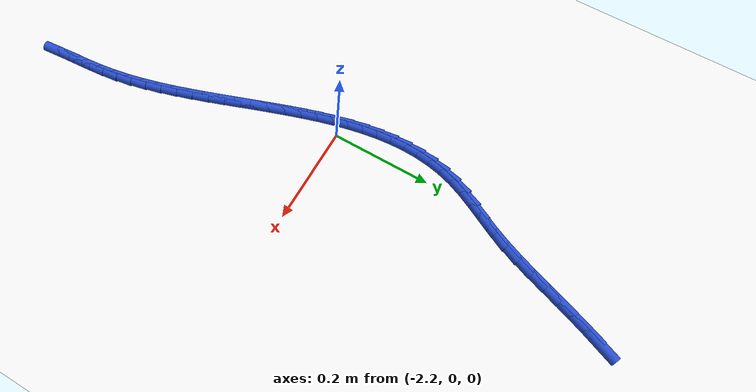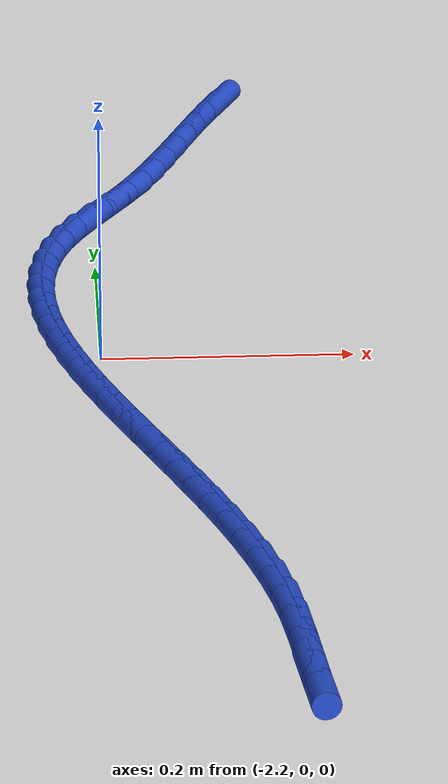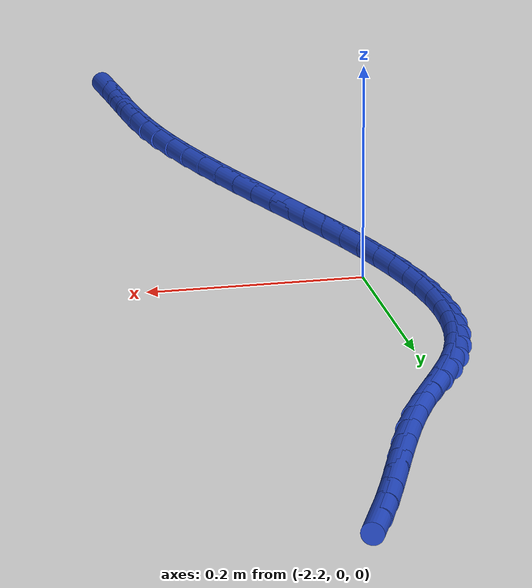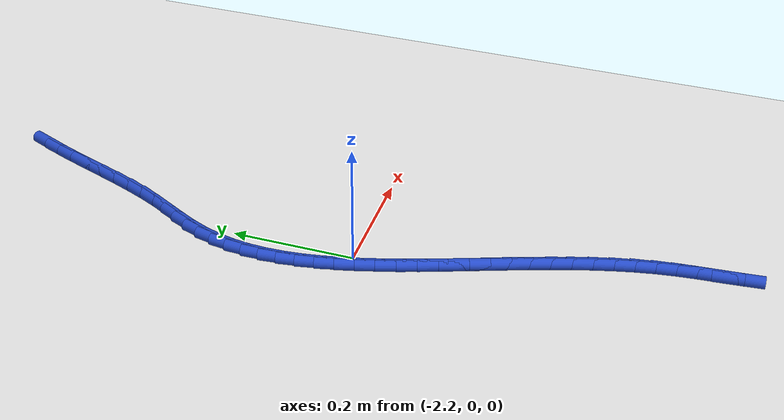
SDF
<sdf version="1.6">
 <world name="default">
  <model name="ground_plane">
   <static>1</static>
   <link name="link">
    <collision name="collision">
     <geometry><plane><normal>0 0 1</normal><size>100 100</size></plane></geometry>
     <surface><friction><ode><mu>100</mu><mu2>50</mu2></ode></friction></surface>
    </collision>
    <visual name="visual">
     <cast_shadows>0</cast_shadows>
     <geometry><plane><normal>0 0 1</normal><size>100 100</size></plane></geometry>
     <material>
      <script><uri>file://media/materials/scripts/gazebo.material</uri><name>Gazebo/WhiteGlow</name></script>
     </material>
    </visual>
   </link>
  </model>
  <model name="line">
   <link name="link_100">
    <pose>-2.076933704836808 0.5950474424611257 0.01 0 1.57 1.1852265255010952</pose>
    <collision name="collision">
     <geometry><cylinder><radius>0.01</radius><length>0.08</length></cylinder></geometry>
    </collision>
    <visual name="visual">
     <material>
      <script><name>Gazebo/Blue</name><uri>file://media/materials/scripts/gazebo.material</uri></script>
     </material>
     <geometry><cylinder><radius>0.01</radius><length>0.08</length></cylinder></geometry>
    </visual>
   </link>
   <link name="link_101">
    <pose>-2.0891616139592695 0.5649209466030753 0.01 0 1.57 1.212980506196031</pose>
    <collision name="collision">
     <geometry><cylinder><radius>0.01</radius><length>0.08</length></cylinder></geometry>
    </collision>
    <visual name="visual">
     <material>
      <script><name>Gazebo/Blue</name><uri>file://media/materials/scripts/gazebo.material</uri></script>
     </material>
     <geometry><cylinder><radius>0.01</radius><length>0.08</length></cylinder></geometry>
    </visual>
   </link>
   <link name="link_102">
    <pose>-2.100732188168347 0.533976240412454 0.01 0 1.57 1.2287905092218045</pose>
    <collision name="collision">
     <geometry><cylinder><radius>0.01</radius><length>0.08</length></cylinder></geometry>
    </collision>
    <visual name="visual">
     <material>
      <script><name>Gazebo/Blue</name><uri>file://media/materials/scripts/gazebo.material</uri></script>
     </material>
     <geometry><cylinder><radius>0.01</radius><length>0.08</length></cylinder></geometry>
    </visual>
   </link>
   <link name="link_103">
    <pose>-2.1119272562987486 0.5025290036370567 0.01 0 1.57 1.233292099516139</pose>
    <collision name="collision">
     <geometry><cylinder><radius>0.01</radius><length>0.08</length></cylinder></geometry>
    </collision>
    <visual name="visual">
     <material>
      <script><name>Gazebo/Blue</name><uri>file://media/materials/scripts/gazebo.material</uri></script>
     </material>
     <geometry><cylinder><radius>0.01</radius><length>0.08</length></cylinder></geometry>
    </visual>
   </link>
   <link name="link_104">
    <pose>-2.1230286471851842 0.4708949160246778 0.01 0 1.57 1.2267125303660324</pose>
    <collision name="collision">
     <geometry><cylinder><radius>0.01</radius><length>0.08</length></cylinder></geometry>
    </collision>
    <visual name="visual">
     <material>
      <script><name>Gazebo/Blue</name><uri>file://media/materials/scripts/gazebo.material</uri></script>
     </material>
     <geometry><cylinder><radius>0.01</radius><length>0.08</length></cylinder></geometry>
    </visual>
   </link>
   <link name="link_105">
    <pose>-2.1343181896623635 0.43938965732311314 0.01 0 1.57 1.208875403700262</pose>
    <collision name="collision">
     <geometry><cylinder><radius>0.01</radius><length>0.08</length></cylinder></geometry>
    </collision>
    <visual name="visual">
     <material>
      <script><name>Gazebo/Blue</name><uri>file://media/materials/scripts/gazebo.material</uri></script>
     </material>
     <geometry><cylinder><radius>0.01</radius><length>0.08</length></cylinder></geometry>
    </visual>
   </link>
   <link name="link_106">
    <pose>-2.146077712564995 0.4083289072801571 0.01 0 1.57 1.1792124687725951</pose>
    <collision name="collision">
     <geometry><cylinder><radius>0.01</radius><length>0.08</length></cylinder></geometry>
    </collision>
    <visual name="visual">
     <material>
      <script><name>Gazebo/Blue</name><uri>file://media/materials/scripts/gazebo.material</uri></script>
     </material>
     <geometry><cylinder><radius>0.01</radius><length>0.08</length></cylinder></geometry>
    </visual>
   </link>
   <link name="link_107">
    <pose>-2.1585890447277896 0.3780283456436044 0.01 0 1.57 1.136882583603699</pose>
    <collision name="collision">
     <geometry><cylinder><radius>0.01</radius><length>0.08</length></cylinder></geometry>
    </collision>
    <visual name="visual">
     <material>
      <script><name>Gazebo/Blue</name><uri>file://media/materials/scripts/gazebo.material</uri></script>
     </material>
     <geometry><cylinder><radius>0.01</radius><length>0.08</length></cylinder></geometry>
    </visual>
   </link>
   <link name="link_108">
    <pose>-2.172131461193955 0.3488022006890795 0.01 0 1.57 1.0950958668600286</pose>
    <collision name="collision">
     <geometry><cylinder><radius>0.01</radius><length>0.08</length></cylinder></geometry>
    </collision>
    <visual name="visual">
     <material>
      <script><name>Gazebo/Blue</name><uri>file://media/materials/scripts/gazebo.material</uri></script>
     </material>
     <geometry><cylinder><radius>0.01</radius><length>0.08</length></cylinder></geometry>
    </visual>
   </link>
   <link name="link_109">
    <pose>-2.1865881488084913 0.3207395801229507 0.01 0 1.57 1.0841174575841934</pose>
    <collision name="collision">
     <geometry><cylinder><radius>0.01</radius><length>0.08</length></cylinder></geometry>
    </collision>
    <visual name="visual">
     <material>
      <script><name>Gazebo/Blue</name><uri>file://media/materials/scripts/gazebo.material</uri></script>
     </material>
     <geometry><cylinder><radius>0.01</radius><length>0.08</length></cylinder></geometry>
    </visual>
   </link>
   <link name="link_110">
    <pose>-2.2010210784248923 0.2934628455775307 0.01 0 1.57 1.1099492296963676</pose>
    <collision name="collision">
     <geometry><cylinder><radius>0.01</radius><length>0.08</length></cylinder></geometry>
    </collision>
    <visual name="visual">
     <material>
      <script><name>Gazebo/Blue</name><uri>file://media/materials/scripts/gazebo.material</uri></script>
     </material>
     <geometry><cylinder><radius>0.01</radius><length>0.08</length></cylinder></geometry>
    </visual>
   </link>
   <link name="link_111">
    <pose>-2.2143901889502384 0.2665363678387439 0.01 0 1.57 1.1755723863722416</pose>
    <collision name="collision">
     <geometry><cylinder><radius>0.01</radius><length>0.08</length></cylinder></geometry>
    </collision>
    <visual name="visual">
     <material>
      <script><name>Gazebo/Blue</name><uri>file://media/materials/scripts/gazebo.material</uri></script>
     </material>
     <geometry><cylinder><radius>0.01</radius><length>0.08</length></cylinder></geometry>
    </visual>
   </link>
   <link name="link_112">
    <pose>-2.225658389968473 0.2395256204548481 0.01 0 1.57 1.269435706342372</pose>
    <collision name="collision">
     <geometry><cylinder><radius>0.01</radius><length>0.08</length></cylinder></geometry>
    </collision>
    <visual name="visual">
     <material>
      <script><name>Gazebo/Blue</name><uri>file://media/materials/scripts/gazebo.material</uri></script>
     </material>
     <geometry><cylinder><radius>0.01</radius><length>0.08</length></cylinder></geometry>
    </visual>
   </link>
   <link name="link_113">
    <pose>-2.234171188793107 0.21213810331507052 0.01 0 1.57 1.3629164360685526</pose>
    <collision name="collision">
     <geometry><cylinder><radius>0.01</radius><length>0.08</length></cylinder></geometry>
    </collision>
    <visual name="visual">
     <material>
      <script><name>Gazebo/Blue</name><uri>file://media/materials/scripts/gazebo.material</uri></script>
     </material>
     <geometry><cylinder><radius>0.01</radius><length>0.08</length></cylinder></geometry>
    </visual>
   </link>
   <link name="link_114">
    <pose>-2.2400299407012425 0.18436189905208386 0.01 0 1.57 1.450756360333045</pose>
    <collision name="collision">
     <geometry><cylinder><radius>0.01</radius><length>0.08</length></cylinder></geometry>
    </collision>
    <visual name="visual">
     <material>
      <script><name>Gazebo/Blue</name><uri>file://media/materials/scripts/gazebo.material</uri></script>
     </material>
     <geometry><cylinder><radius>0.01</radius><length>0.08</length></cylinder></geometry>
    </visual>
   </link>
   <link name="link_115">
    <pose>-2.243424654576484 0.1562179999223557 0.01 0 1.57 1.5314813528676507</pose>
    <collision name="collision">
     <geometry><cylinder><radius>0.01</radius><length>0.08</length></cylinder></geometry>
    </collision>
    <visual name="visual">
     <material>
      <script><name>Gazebo/Blue</name><uri>file://media/materials/scripts/gazebo.material</uri></script>
     </material>
     <geometry><cylinder><radius>0.01</radius><length>0.08</length></cylinder></geometry>
    </visual>
   </link>
   <link name="link_116">
    <pose>-2.2445453393024355 0.12772739818235485 0.01 0 1.57 -1.537378556017024</pose>
    <collision name="collision">
     <geometry><cylinder><radius>0.01</radius><length>0.08</length></cylinder></geometry>
    </collision>
    <visual name="visual">
     <material>
      <script><name>Gazebo/Blue</name><uri>file://media/materials/scripts/gazebo.material</uri></script>
     </material>
     <geometry><cylinder><radius>0.01</radius><length>0.08</length></cylinder></geometry>
    </visual>
   </link>
   <link name="link_117">
    <pose>-2.2435820037626995 0.09891108608854889 0.01 0 1.57 -1.4729896959925945</pose>
    <collision name="collision">
     <geometry><cylinder><radius>0.01</radius><length>0.08</length></cylinder></geometry>
    </collision>
    <visual name="visual">
     <material>
      <script><name>Gazebo/Blue</name><uri>file://media/materials/scripts/gazebo.material</uri></script>
     </material>
     <geometry><cylinder><radius>0.01</radius><length>0.08</length></cylinder></geometry>
    </visual>
   </link>
   <link name="link_118">
    <pose>-2.240724656840879 0.06979005589740574 0.01 0 1.57 -1.4169000657465562</pose>
    <collision name="collision">
     <geometry><cylinder><radius>0.01</radius><length>0.08</length></cylinder></geometry>
    </collision>
    <visual name="visual">
     <material>
      <script><name>Gazebo/Blue</name><uri>file://media/materials/scripts/gazebo.material</uri></script>
     </material>
     <geometry><cylinder><radius>0.01</radius><length>0.08</length></cylinder></geometry>
    </visual>
   </link>
   <link name="link_119">
    <pose>-2.2361633074205787 0.04038529986539314 0.01 0 1.57 -1.3688077499604379</pose>
    <collision name="collision">
     <geometry><cylinder><radius>0.01</radius><length>0.08</length></cylinder></geometry>
    </collision>
    <visual name="visual">
     <material>
      <script><name>Gazebo/Blue</name><uri>file://media/materials/scripts/gazebo.material</uri></script>
     </material>
     <geometry><cylinder><radius>0.01</radius><length>0.08</length></cylinder></geometry>
    </visual>
   </link>
   <link name="link_120">
    <pose>-2.2300879643854015 0.010717810248979774 0.01 0 1.57 -1.32827301989842</pose>
    <collision name="collision">
     <geometry><cylinder><radius>0.01</radius><length>0.08</length></cylinder></geometry>
    </collision>
    <visual name="visual">
     <material>
      <script><name>Gazebo/Blue</name><uri>file://media/materials/scripts/gazebo.material</uri></script>
     </material>
     <geometry><cylinder><radius>0.01</radius><length>0.08</length></cylinder></geometry>
    </visual>
   </link>
   <link name="link_121">
    <pose>-2.222688636618951 -0.019191420695366675 0.01 0 1.57 -1.294807580846315</pose>
    <collision name="collision">
     <geometry><cylinder><radius>0.01</radius><length>0.08</length></cylinder></geometry>
    </collision>
    <visual name="visual">
     <material>
      <script><name>Gazebo/Blue</name><uri>file://media/materials/scripts/gazebo.material</uri></script>
     </material>
     <geometry><cylinder><radius>0.01</radius><length>0.08</length></cylinder></geometry>
    </visual>
   </link>
   <link name="link_122">
    <pose>-2.2141553330048303 -0.04932140071117832 0.01 0 1.57 -1.2679346530531934</pose>
    <collision name="collision">
     <geometry><cylinder><radius>0.01</radius><length>0.08</length></cylinder></geometry>
    </collision>
    <visual name="visual">
     <material>
      <script><name>Gazebo/Blue</name><uri>file://media/materials/scripts/gazebo.material</uri></script>
     </material>
     <geometry><cylinder><radius>0.01</radius><length>0.08</length></cylinder></geometry>
    </visual>
   </link>
   <link name="link_123">
    <pose>-2.204678062426643 -0.0796511375419871 0.01 0 1.57 -1.2472258988918163</pose>
    <collision name="collision">
     <geometry><cylinder><radius>0.01</radius><length>0.08</length></cylinder></geometry>
    </collision>
    <visual name="visual">
     <material>
      <script><name>Gazebo/Blue</name><uri>file://media/materials/scripts/gazebo.material</uri></script>
     </material>
     <geometry><cylinder><radius>0.01</radius><length>0.08</length></cylinder></geometry>
    </visual>
   </link>
   <link name="link_124">
    <pose>-2.1944468337679925 -0.11015963893132508 0.01 0 1.57 -1.2323220374790962</pose>
    <collision name="collision">
     <geometry><cylinder><radius>0.01</radius><length>0.08</length></cylinder></geometry>
    </collision>
    <visual name="visual">
     <material>
      <script><name>Gazebo/Blue</name><uri>file://media/materials/scripts/gazebo.material</uri></script>
     </material>
     <geometry><cylinder><radius>0.01</radius><length>0.08</length></cylinder></geometry>
    </visual>
   </link>
   <link name="link_125">
    <pose>-2.1836516559124814 -0.140825912622725 0.01 0 1.57 -1.2229429392685294</pose>
    <collision name="collision">
     <geometry><cylinder><radius>0.01</radius><length>0.08</length></cylinder></geometry>
    </collision>
    <visual name="visual">
     <material>
      <script><name>Gazebo/Blue</name><uri>file://media/materials/scripts/gazebo.material</uri></script>
     </material>
     <geometry><cylinder><radius>0.01</radius><length>0.08</length></cylinder></geometry>
    </visual>
   </link>
   <link name="link_126">
    <pose>-2.172482537743714 -0.1716289663597173 0.01 0 1.57 -1.2188914333213372</pose>
    <collision name="collision">
     <geometry><cylinder><radius>0.01</radius><length>0.08</length></cylinder></geometry>
    </collision>
    <visual name="visual">
     <material>
      <script><name>Gazebo/Blue</name><uri>file://media/materials/scripts/gazebo.material</uri></script>
     </material>
     <geometry><cylinder><radius>0.01</radius><length>0.08</length></cylinder></geometry>
    </visual>
   </link>
   <link name="link_127">
    <pose>-2.1611294881452947 -0.20254780788583482 0.01 0 1.57 -1.2200536035585547</pose>
    <collision name="collision">
     <geometry><cylinder><radius>0.01</radius><length>0.08</length></cylinder></geometry>
    </collision>
    <visual name="visual">
     <material>
      <script><name>Gazebo/Blue</name><uri>file://media/materials/scripts/gazebo.material</uri></script>
     </material>
     <geometry><cylinder><radius>0.01</radius><length>0.08</length></cylinder></geometry>
    </visual>
   </link>
   <link name="link_128">
    <pose>-2.149782516000826 -0.2335614449446095 0.01 0 1.57 -1.2263971753059795</pose>
    <collision name="collision">
     <geometry><cylinder><radius>0.01</radius><length>0.08</length></cylinder></geometry>
    </collision>
    <visual name="visual">
     <material>
      <script><name>Gazebo/Blue</name><uri>file://media/materials/scripts/gazebo.material</uri></script>
     </material>
     <geometry><cylinder><radius>0.01</radius><length>0.08</length></cylinder></geometry>
    </visual>
   </link>
   <link name="link_129">
    <pose>-2.138631630193911 -0.2646488852795734 0.01 0 1.57 -1.2379686771853458</pose>
    <collision name="collision">
     <geometry><cylinder><radius>0.01</radius><length>0.08</length></cylinder></geometry>
    </collision>
    <visual name="visual">
     <material>
      <script><name>Gazebo/Blue</name><uri>file://media/materials/scripts/gazebo.material</uri></script>
     </material>
     <geometry><cylinder><radius>0.01</radius><length>0.08</length></cylinder></geometry>
    </visual>
   </link>
   <link name="link_130">
    <pose>-2.127866839608153 -0.2957891366342585 0.01 0 1.57 -1.2548893130180394</pose>
    <collision name="collision">
     <geometry><cylinder><radius>0.01</radius><length>0.08</length></cylinder></geometry>
    </collision>
    <visual name="visual">
     <material>
      <script><name>Gazebo/Blue</name><uri>file://media/materials/scripts/gazebo.material</uri></script>
     </material>
     <geometry><cylinder><radius>0.01</radius><length>0.08</length></cylinder></geometry>
    </visual>
   </link>
   <link name="link_131">
    <pose>-2.1176781531271565 -0.3269612067521969 0.01 0 1.57 -1.2773487920828595</pose>
    <collision name="collision">
     <geometry><cylinder><radius>0.01</radius><length>0.08</length></cylinder></geometry>
    </collision>
    <visual name="visual">
     <material>
      <script><name>Gazebo/Blue</name><uri>file://media/materials/scripts/gazebo.material</uri></script>
     </material>
     <geometry><cylinder><radius>0.01</radius><length>0.08</length></cylinder></geometry>
    </visual>
   </link>
   <link name="link_132">
    <pose>-2.1082555796345233 -0.35814410337692126 0.01 0 1.57 -1.3055956631768295</pose>
    <collision name="collision">
     <geometry><cylinder><radius>0.01</radius><length>0.08</length></cylinder></geometry>
    </collision>
    <visual name="visual">
     <material>
      <script><name>Gazebo/Blue</name><uri>file://media/materials/scripts/gazebo.material</uri></script>
     </material>
     <geometry><cylinder><radius>0.01</radius><length>0.08</length></cylinder></geometry>
    </visual>
   </link>
   <link name="link_133">
    <pose>-2.099789128013858 -0.38931683425196206 0.01 0 1.57 -1.3399219462603857</pose>
    <collision name="collision">
     <geometry><cylinder><radius>0.01</radius><length>0.08</length></cylinder></geometry>
    </collision>
    <visual name="visual">
     <material>
      <script><name>Gazebo/Blue</name><uri>file://media/materials/scripts/gazebo.material</uri></script>
     </material>
     <geometry><cylinder><radius>0.01</radius><length>0.08</length></cylinder></geometry>
    </visual>
   </link>
   <link name="link_134">
    <pose>-2.0924688071487645 -0.42045840712085214 0.01 0 1.57 -1.3806391160789344</pose>
    <collision name="collision">
     <geometry><cylinder><radius>0.01</radius><length>0.08</length></cylinder></geometry>
    </collision>
    <visual name="visual">
     <material>
      <script><name>Gazebo/Blue</name><uri>file://media/materials/scripts/gazebo.material</uri></script>
     </material>
     <geometry><cylinder><radius>0.01</radius><length>0.08</length></cylinder></geometry>
    </visual>
   </link>
   <link name="link_135">
    <pose>-2.086484625922846 -0.45154782972712354 0.01 0 1.57 -1.4275004804514606</pose>
    <collision name="collision">
     <geometry><cylinder><radius>0.01</radius><length>0.08</length></cylinder></geometry>
    </collision>
    <visual name="visual">
     <material>
      <script><name>Gazebo/Blue</name><uri>file://media/materials/scripts/gazebo.material</uri></script>
     </material>
     <geometry><cylinder><radius>0.01</radius><length>0.08</length></cylinder></geometry>
    </visual>
   </link>
   <link name="link_136">
    <pose>-2.082009510021694 -0.48256368799357274 0.01 0 1.57 -1.468705047981447</pose>
    <collision name="collision">
     <geometry><cylinder><radius>0.01</radius><length>0.08</length></cylinder></geometry>
    </collision>
    <visual name="visual">
     <material>
      <script><name>Gazebo/Blue</name><uri>file://media/materials/scripts/gazebo.material</uri></script>
     </material>
     <geometry><cylinder><radius>0.01</radius><length>0.08</length></cylinder></geometry>
    </visual>
   </link>
   <link name="link_137">
    <pose>-2.0788426900367414 -0.5134753405110145 0.01 0 1.57 -1.492219929101447</pose>
    <collision name="collision">
     <geometry><cylinder><radius>0.01</radius><length>0.08</length></cylinder></geometry>
    </collision>
    <visual name="visual">
     <material>
      <script><name>Gazebo/Blue</name><uri>file://media/materials/scripts/gazebo.material</uri></script>
     </material>
     <geometry><cylinder><radius>0.01</radius><length>0.08</length></cylinder></geometry>
    </visual>
   </link>
   <link name="link_138">
    <pose>-2.076420076465489 -0.5442431747192501 0.01 0 1.57 -1.4971167766301487</pose>
    <collision name="collision">
     <geometry><cylinder><radius>0.01</radius><length>0.08</length></cylinder></geometry>
    </collision>
    <visual name="visual">
     <material>
      <script><name>Gazebo/Blue</name><uri>file://media/materials/scripts/gazebo.material</uri></script>
     </material>
     <geometry><cylinder><radius>0.01</radius><length>0.08</length></cylinder></geometry>
    </visual>
   </link>
   <link name="link_139">
    <pose>-2.074162572123153 -0.5748272074862724 0.01 0 1.57 -1.4830292833164638</pose>
    <collision name="collision">
     <geometry><cylinder><radius>0.01</radius><length>0.08</length></cylinder></geometry>
    </collision>
    <visual name="visual">
     <material>
      <script><name>Gazebo/Blue</name><uri>file://media/materials/scripts/gazebo.material</uri></script>
     </material>
     <geometry><cylinder><radius>0.01</radius><length>0.08</length></cylinder></geometry>
    </visual>
   </link>
  </model>
 </world>
</sdf>
